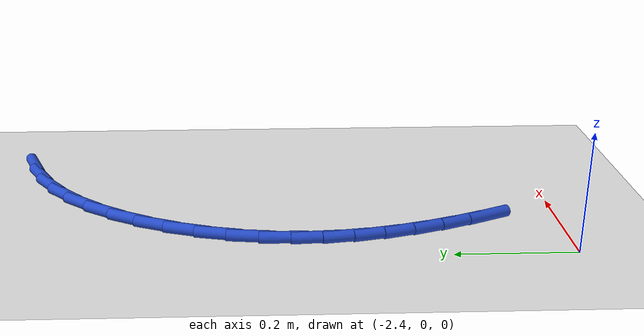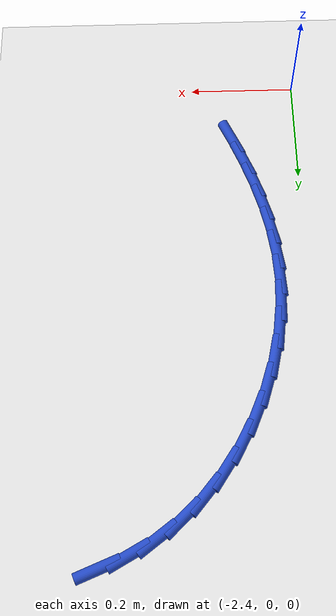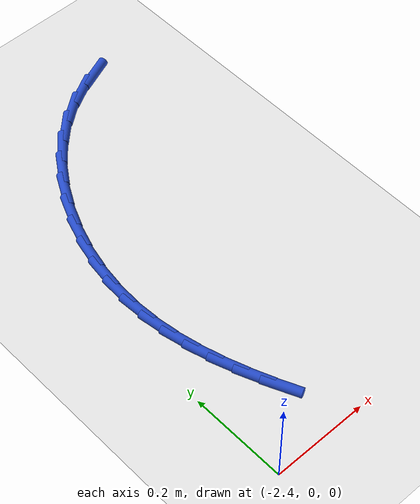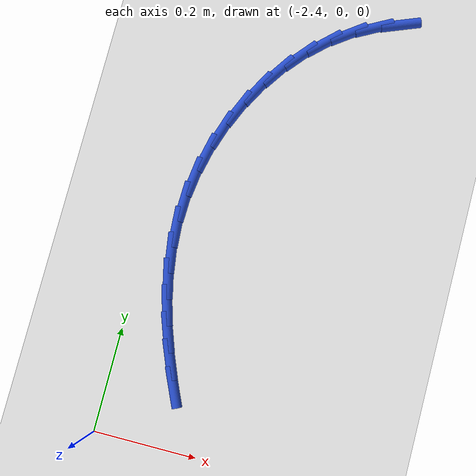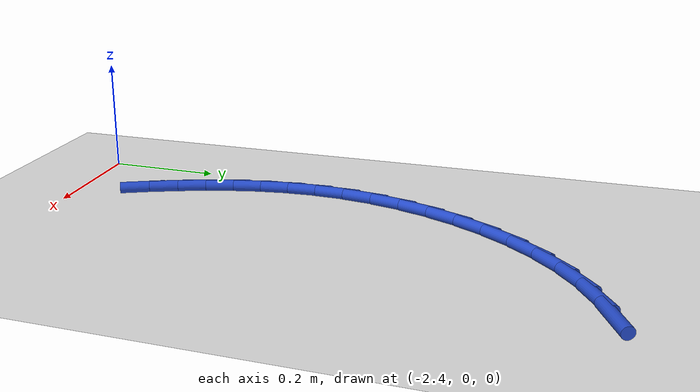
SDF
<sdf version="1.6">
 <world name="default">
  <model name="ground_plane">
   <static>1</static>
   <link name="link">
    <collision name="collision">
     <geometry><plane><normal>0 0 1</normal><size>100 100</size></plane></geometry>
     <surface><friction><ode><mu>100</mu><mu2>50</mu2></ode></friction></surface>
    </collision>
    <visual name="visual">
     <cast_shadows>0</cast_shadows>
     <geometry><plane><normal>0 0 1</normal><size>100 100</size></plane></geometry>
     <material>
      <script><uri>file://media/materials/scripts/gazebo.material</uri><name>Gazebo/WhiteGlow</name></script>
     </material>
    </visual>
   </link>
  </model>
  <model name="line">
   <link name="link_59">
    <pose>-2.0246579335260892 0.9169812634596782 0.01 0 1.57 0.3746512030141737</pose>
    <collision name="collision">
     <geometry><cylinder><radius>0.01</radius><length>0.08</length></cylinder></geometry>
    </collision>
    <visual name="visual">
     <material>
      <script><name>Gazebo/Blue</name><uri>file://media/materials/scripts/gazebo.material</uri></script>
     </material>
     <geometry><cylinder><radius>0.01</radius><length>0.08</length></cylinder></geometry>
    </visual>
   </link>
   <link name="link_60">
    <pose>-2.0739537193232573 0.8975969876900171 0.01 0 1.57 0.49698217731911737</pose>
    <collision name="collision">
     <geometry><cylinder><radius>0.01</radius><length>0.08</length></cylinder></geometry>
    </collision>
    <visual name="visual">
     <material>
      <script><name>Gazebo/Blue</name><uri>file://media/materials/scripts/gazebo.material</uri></script>
     </material>
     <geometry><cylinder><radius>0.01</radius><length>0.08</length></cylinder></geometry>
    </visual>
   </link>
   <link name="link_61">
    <pose>-2.1201506039925304 0.8725402387869947 0.01 0 1.57 0.6322317661031643</pose>
    <collision name="collision">
     <geometry><cylinder><radius>0.01</radius><length>0.08</length></cylinder></geometry>
    </collision>
    <visual name="visual">
     <material>
      <script><name>Gazebo/Blue</name><uri>file://media/materials/scripts/gazebo.material</uri></script>
     </material>
     <geometry><cylinder><radius>0.01</radius><length>0.08</length></cylinder></geometry>
    </visual>
   </link>
   <link name="link_62">
    <pose>-2.1626700665698073 0.8413930955523492 0.01 0 1.57 0.7571340065403366</pose>
    <collision name="collision">
     <geometry><cylinder><radius>0.01</radius><length>0.08</length></cylinder></geometry>
    </collision>
    <visual name="visual">
     <material>
      <script><name>Gazebo/Blue</name><uri>file://media/materials/scripts/gazebo.material</uri></script>
     </material>
     <geometry><cylinder><radius>0.01</radius><length>0.08</length></cylinder></geometry>
    </visual>
   </link>
   <link name="link_63">
    <pose>-2.2013104240512322 0.8048775229027118 0.01 0 1.57 0.8712085655976158</pose>
    <collision name="collision">
     <geometry><cylinder><radius>0.01</radius><length>0.08</length></cylinder></geometry>
    </collision>
    <visual name="visual">
     <material>
      <script><name>Gazebo/Blue</name><uri>file://media/materials/scripts/gazebo.material</uri></script>
     </material>
     <geometry><cylinder><radius>0.01</radius><length>0.08</length></cylinder></geometry>
    </visual>
   </link>
   <link name="link_64">
    <pose>-2.235893046636329 0.7637852187147761 0.01 0 1.57 0.9762196412760937</pose>
    <collision name="collision">
     <geometry><cylinder><radius>0.01</radius><length>0.08</length></cylinder></geometry>
    </collision>
    <visual name="visual">
     <material>
      <script><name>Gazebo/Blue</name><uri>file://media/materials/scripts/gazebo.material</uri></script>
     </material>
     <geometry><cylinder><radius>0.01</radius><length>0.08</length></cylinder></geometry>
    </visual>
   </link>
   <link name="link_65">
    <pose>-2.2662393045246167 0.7189078808652356 0.01 0 1.57 1.0743523324201953</pose>
    <collision name="collision">
     <geometry><cylinder><radius>0.01</radius><length>0.08</length></cylinder></geometry>
    </collision>
    <visual name="visual">
     <material>
      <script><name>Gazebo/Blue</name><uri>file://media/materials/scripts/gazebo.material</uri></script>
     </material>
     <geometry><cylinder><radius>0.01</radius><length>0.08</length></cylinder></geometry>
    </visual>
   </link>
   <link name="link_66">
    <pose>-2.2921705679156195 0.6710372072307843 0.01 0 1.57 1.1679634559453471</pose>
    <collision name="collision">
     <geometry><cylinder><radius>0.01</radius><length>0.08</length></cylinder></geometry>
    </collision>
    <visual name="visual">
     <material>
      <script><name>Gazebo/Blue</name><uri>file://media/materials/scripts/gazebo.material</uri></script>
     </material>
     <geometry><cylinder><radius>0.01</radius><length>0.08</length></cylinder></geometry>
    </visual>
   </link>
   <link name="link_67">
    <pose>-2.313508207008858 0.6209648956881154 0.01 0 1.57 1.2594896604889223</pose>
    <collision name="collision">
     <geometry><cylinder><radius>0.01</radius><length>0.08</length></cylinder></geometry>
    </collision>
    <visual name="visual">
     <material>
      <script><name>Gazebo/Blue</name><uri>file://media/materials/scripts/gazebo.material</uri></script>
     </material>
     <geometry><cylinder><radius>0.01</radius><length>0.08</length></cylinder></geometry>
    </visual>
   </link>
   <link name="link_68">
    <pose>-2.3300735920038544 0.5694826441139232 0.01 0 1.57 1.3514578016391094</pose>
    <collision name="collision">
     <geometry><cylinder><radius>0.01</radius><length>0.08</length></cylinder></geometry>
    </collision>
    <visual name="visual">
     <material>
      <script><name>Gazebo/Blue</name><uri>file://media/materials/scripts/gazebo.material</uri></script>
     </material>
     <geometry><cylinder><radius>0.01</radius><length>0.08</length></cylinder></geometry>
    </visual>
   </link>
   <link name="link_69">
    <pose>-2.341688093100129 0.5173821503849008 0.01 0 1.57 1.4465385578409833</pose>
    <collision name="collision">
     <geometry><cylinder><radius>0.01</radius><length>0.08</length></cylinder></geometry>
    </collision>
    <visual name="visual">
     <material>
      <script><name>Gazebo/Blue</name><uri>file://media/materials/scripts/gazebo.material</uri></script>
     </material>
     <geometry><cylinder><radius>0.01</radius><length>0.08</length></cylinder></geometry>
    </visual>
   </link>
   <link name="link_70">
    <pose>-2.348174001416299 0.465453863191067 0.01 0 1.57 1.5442007217761757</pose>
    <collision name="collision">
     <geometry><cylinder><radius>0.01</radius><length>0.08</length></cylinder></geometry>
    </collision>
    <visual name="visual">
     <material>
      <script><name>Gazebo/Blue</name><uri>file://media/materials/scripts/gazebo.material</uri></script>
     </material>
     <geometry><cylinder><radius>0.01</radius><length>0.08</length></cylinder></geometry>
    </visual>
   </link>
   <link name="link_71">
    <pose>-2.3495363780327994 0.41424031172272285 0.01 0 1.57 -1.5044743644376892</pose>
    <collision name="collision">
     <geometry><cylinder><radius>0.01</radius><length>0.08</length></cylinder></geometry>
    </collision>
    <visual name="visual">
     <material>
      <script><name>Gazebo/Blue</name><uri>file://media/materials/scripts/gazebo.material</uri></script>
     </material>
     <geometry><cylinder><radius>0.01</radius><length>0.08</length></cylinder></geometry>
    </visual>
   </link>
   <link name="link_72">
    <pose>-2.3461821101756373 0.3637389654897328 0.01 0 1.57 -1.419339241232009</pose>
    <collision name="collision">
     <geometry><cylinder><radius>0.01</radius><length>0.08</length></cylinder></geometry>
    </collision>
    <visual name="visual">
     <material>
      <script><name>Gazebo/Blue</name><uri>file://media/materials/scripts/gazebo.material</uri></script>
     </material>
     <geometry><cylinder><radius>0.01</radius><length>0.08</length></cylinder></geometry>
    </visual>
   </link>
   <link name="link_73">
    <pose>-2.338571543260109 0.3138747802945052 0.01 0 1.57 -1.3434367675696062</pose>
    <collision name="collision">
     <geometry><cylinder><radius>0.01</radius><length>0.08</length></cylinder></geometry>
    </collision>
    <visual name="visual">
     <material>
      <script><name>Gazebo/Blue</name><uri>file://media/materials/scripts/gazebo.material</uri></script>
     </material>
     <geometry><cylinder><radius>0.01</radius><length>0.08</length></cylinder></geometry>
    </visual>
   </link>
   <link name="link_74">
    <pose>-2.3271650227015046 0.26457271193944865 0.01 0 1.57 -1.2775056799230746</pose>
    <collision name="collision">
     <geometry><cylinder><radius>0.01</radius><length>0.08</length></cylinder></geometry>
    </collision>
    <visual name="visual">
     <material>
      <script><name>Gazebo/Blue</name><uri>file://media/materials/scripts/gazebo.material</uri></script>
     </material>
     <geometry><cylinder><radius>0.01</radius><length>0.08</length></cylinder></geometry>
    </visual>
   </link>
   <link name="link_75">
    <pose>-2.3124228939151195 0.21575771622697185 0.01 0 1.57 -1.2217276986369106</pose>
    <collision name="collision">
     <geometry><cylinder><radius>0.01</radius><length>0.08</length></cylinder></geometry>
    </collision>
    <visual name="visual">
     <material>
      <script><name>Gazebo/Blue</name><uri>file://media/materials/scripts/gazebo.material</uri></script>
     </material>
     <geometry><cylinder><radius>0.01</radius><length>0.08</length></cylinder></geometry>
    </visual>
   </link>
   <link name="link_76">
    <pose>-2.2948055023162444 0.16735474895948305 0.01 0 1.57 -1.1759198351075355</pose>
    <collision name="collision">
     <geometry><cylinder><radius>0.01</radius><length>0.08</length></cylinder></geometry>
    </collision>
    <visual name="visual">
     <material>
      <script><name>Gazebo/Blue</name><uri>file://media/materials/scripts/gazebo.material</uri></script>
     </material>
     <geometry><cylinder><radius>0.01</radius><length>0.08</length></cylinder></geometry>
    </visual>
   </link>
   <link name="link_77">
    <pose>-2.2747731933201734 0.11928876593939118 0.01 0 1.57 -1.1397090172017077</pose>
    <collision name="collision">
     <geometry><cylinder><radius>0.01</radius><length>0.08</length></cylinder></geometry>
    </collision>
    <visual name="visual">
     <material>
      <script><name>Gazebo/Blue</name><uri>file://media/materials/scripts/gazebo.material</uri></script>
     </material>
     <geometry><cylinder><radius>0.01</radius><length>0.08</length></cylinder></geometry>
    </visual>
   </link>
  </model>
 </world>
</sdf>
